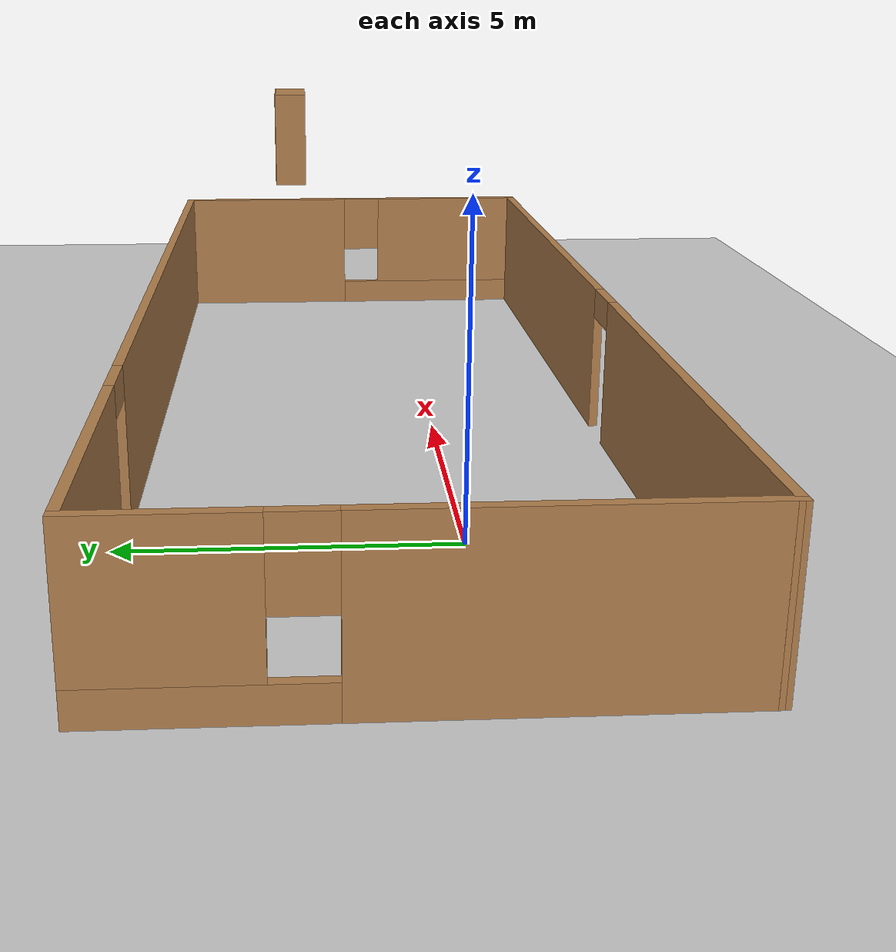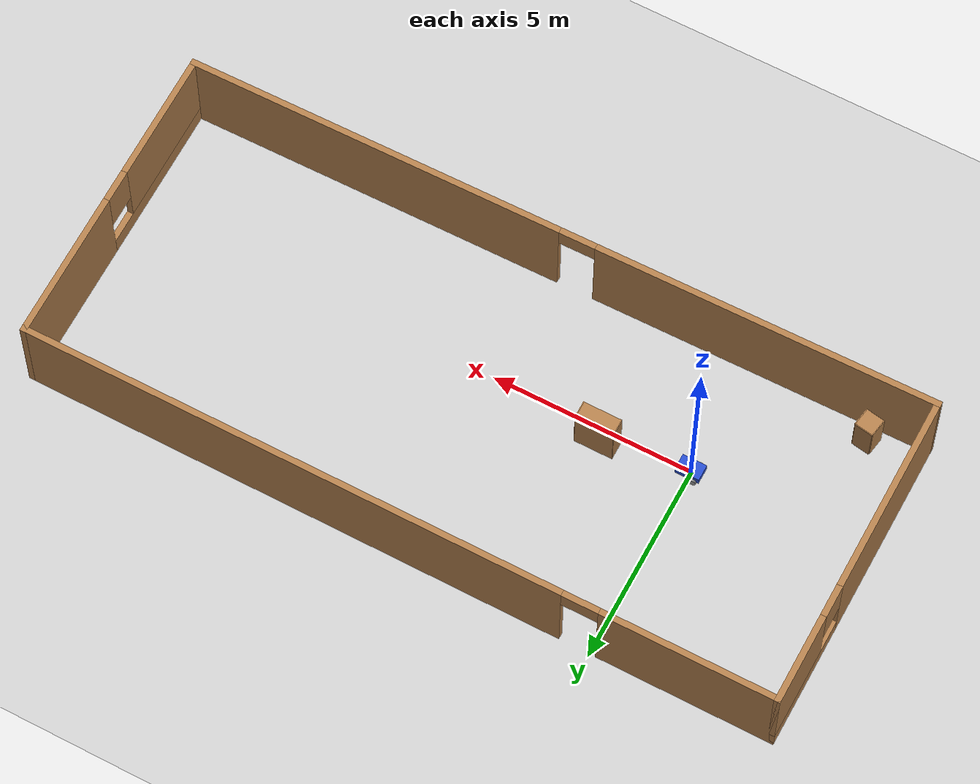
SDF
<sdf version="1.7">
 <world name="default">
  <light name="sun" type="directional">
   <pose>0 0 10 0 -0 0</pose>
   <diffuse>0.8 0.8 0.8 1</diffuse>
   <specular>0.2 0.2 0.2 1</specular>
   <attenuation>
    <range>1000</range>
    <constant>0.9</constant>
    <linear>0.01</linear>
    <quadratic>0.001</quadratic>
   </attenuation>
   <direction>-0.5 0.1 -0.9</direction>
   <spot><inner_angle>0</inner_angle><outer_angle>0</outer_angle><falloff>0</falloff></spot>
  </light>
  <model name="ground_plane">
   <static>1</static>
   <link name="link">
    <collision name="collision">
     <geometry><plane><normal>0 0 1</normal><size>100 100</size></plane></geometry>
     <surface><friction><ode><mu>100</mu><mu2>50</mu2></ode></friction></surface>
    </collision>
    <visual name="visual">
     <cast_shadows>0</cast_shadows>
     <geometry><plane><normal>0 0 1</normal><size>100 100</size></plane></geometry>
     <material>
      <script><uri>file://media/materials/scripts/gazebo.material</uri><name>Gazebo/Grey</name></script>
     </material>
    </visual>
   </link>
  </model>
  <gravity>0 0 -9.8</gravity>
  <magnetic_field>6e-06 2.3e-05 -4.2e-05</magnetic_field>
  <atmosphere type="adiabatic"/>
  <physics type="ode">
   <max_step_size>0.001</max_step_size>
   <real_time_factor>1</real_time_factor>
   <real_time_update_rate>1000</real_time_update_rate>
  </physics>
  <scene><ambient>0.4 0.4 0.4 1</ambient><background>0.7 0.7 0.7 1</background><shadows>1</shadows></scene>
  <audio><device>default</device></audio>
  <spherical_coordinates>
   <surface_model>EARTH_WGS84</surface_model>
   <latitude_deg>0</latitude_deg>
   <longitude_deg>0</longitude_deg>
   <elevation>0</elevation>
   <heading_deg>0</heading_deg>
  </spherical_coordinates>
  <model name="bookshelf">
   <static>1</static>
   <link name="link">
    <inertial><mass>1</mass></inertial>
    <collision name="back">
     <pose>0 0.005 0.6 0 -0 0</pose>
     <geometry><box><size>0.9 0.01 1.2</size></box></geometry>
    </collision>
    <visual name="visual1">
     <pose>0 0.005 0.6 0 -0 0</pose>
     <geometry><box><size>0.9 0.01 1.2</size></box></geometry>
     <material>
      <script><uri>file://media/materials/scripts/gazebo.material</uri><name>Gazebo/Wood</name></script>
     </material>
    </visual>
    <collision name="left_side">
     <pose>0.45 -0.195 0.6 0 -0 0</pose>
     <geometry><box><size>0.02 0.4 1.2</size></box></geometry>
    </collision>
    <visual name="visual2">
     <pose>0.45 -0.195 0.6 0 -0 0</pose>
     <geometry><box><size>0.02 0.4 1.2</size></box></geometry>
     <material>
      <script><uri>file://media/materials/scripts/gazebo.material</uri><name>Gazebo/Wood</name></script>
     </material>
    </visual>
    <collision name="right_side">
     <pose>-0.45 -0.195 0.6 0 -0 0</pose>
     <geometry><box><size>0.02 0.4 1.2</size></box></geometry>
    </collision>
    <visual name="visual3">
     <pose>-0.45 -0.195 0.6 0 -0 0</pose>
     <geometry><box><size>0.02 0.4 1.2</size></box></geometry>
     <material>
      <script><uri>file://media/materials/scripts/gazebo.material</uri><name>Gazebo/Wood</name></script>
     </material>
    </visual>
    <collision name="bottom">
     <pose>0 -0.195 0.03 0 -0 0</pose>
     <geometry><box><size>0.88 0.4 0.06</size></box></geometry>
    </collision>
    <visual name="visual4">
     <pose>0 -0.195 0.03 0 -0 0</pose>
     <geometry><box><size>0.88 0.4 0.06</size></box></geometry>
     <material>
      <script><uri>file://media/materials/scripts/gazebo.material</uri><name>Gazebo/Wood</name></script>
     </material>
    </visual>
    <collision name="top">
     <pose>0 -0.195 1.19 0 -0 0</pose>
     <geometry><box><size>0.88 0.4 0.02</size></box></geometry>
    </collision>
    <visual name="visual5">
     <pose>0 -0.195 1.19 0 -0 0</pose>
     <geometry><box><size>0.88 0.4 0.02</size></box></geometry>
     <material>
      <script><uri>file://media/materials/scripts/gazebo.material</uri><name>Gazebo/Wood</name></script>
     </material>
    </visual>
    <collision name="low_shelf">
     <pose>0 -0.195 0.43 0 -0 0</pose>
     <geometry><box><size>0.88 0.4 0.02</size></box></geometry>
    </collision>
    <visual name="visual6">
     <pose>0 -0.195 0.43 0 -0 0</pose>
     <geometry><box><size>0.88 0.4 0.02</size></box></geometry>
     <material>
      <script><uri>file://media/materials/scripts/gazebo.material</uri><name>Gazebo/Wood</name></script>
     </material>
    </visual>
    <collision name="high_shelf">
     <pose>0 -0.195 0.8 0 -0 0</pose>
     <geometry><box><size>0.88 0.4 0.02</size></box></geometry>
    </collision>
    <visual name="visual7">
     <pose>0 -0.195 0.8 0 -0 0</pose>
     <geometry><box><size>0.88 0.4 0.02</size></box></geometry>
     <material>
      <script><uri>file://media/materials/scripts/gazebo.material</uri><name>Gazebo/Wood</name></script>
     </material>
    </visual>
   </link>
   <pose>1.26303 2.57704 5.00794 0 -0 0</pose>
  </model>
  <model name="cabinet">
   <static>1</static>
   <link name="cabinet_bottom_plate">
    <inertial>
     <pose>0 0 -1 0 -0 0</pose>
     <inertia><ixx>2.05</ixx><ixy>0</ixy><ixz>0</ixz><iyy>2.05</iyy><iyz>0</iyz><izz>2.05</izz></inertia>
     <mass>25</mass>
    </inertial>
    <collision name="cabinet_bottom_plate_geom">
     <pose>0 0 0.01 0 -0 0</pose>
     <geometry><box><size>0.45 0.45 0.02</size></box></geometry>
    </collision>
    <visual name="cabinet_bottom_plate_geom_visual">
     <pose>0 0 0.01 0 -0 0</pose>
     <geometry><box><size>0.45 0.45 0.02</size></box></geometry>
     <material>
      <script><uri>file://media/materials/scripts/gazebo.material</uri><name>Gazebo/Wood</name></script>
     </material>
    </visual>
    <collision name="cabinet_bottom_plate_geom_cabinet_back_plate">
     <pose>0.235 0 0.51 0 -0 0</pose>
     <geometry><box><size>0.02 0.45 1.02</size></box></geometry>
    </collision>
    <visual name="cabinet_bottom_plate_geom_cabinet_back_plate_visual">
     <pose>0.235 0 0.51 0 -0 0</pose>
     <geometry><box><size>0.02 0.45 1.02</size></box></geometry>
     <material>
      <script><uri>file://media/materials/scripts/gazebo.material</uri><name>Gazebo/Wood</name></script>
     </material>
    </visual>
    <collision name="cabinet_bottom_plate_geom_cabinet_left_plate">
     <pose>0 0.235 0.51 0 -0 0</pose>
     <geometry><box><size>0.45 0.02 1.02</size></box></geometry>
    </collision>
    <visual name="cabinet_bottom_plate_geom_cabinet_left_plate_visual">
     <pose>0 0.235 0.51 0 -0 0</pose>
     <geometry><box><size>0.45 0.02 1.02</size></box></geometry>
     <material>
      <script><uri>file://media/materials/scripts/gazebo.material</uri><name>Gazebo/Wood</name></script>
     </material>
    </visual>
    <collision name="cabinet_bottom_plate_geom_cabinet_middle_plate">
     <pose>0 0 0.51 0 -0 0</pose>
     <geometry><box><size>0.45 0.45 0.02</size></box></geometry>
    </collision>
    <visual name="cabinet_bottom_plate_geom_cabinet_middle_plate_visual">
     <pose>0 0 0.51 0 -0 0</pose>
     <geometry><box><size>0.45 0.45 0.02</size></box></geometry>
     <material>
      <script><uri>file://media/materials/scripts/gazebo.material</uri><name>Gazebo/Wood</name></script>
     </material>
    </visual>
    <collision name="cabinet_bottom_plate_geom_cabinet_right_plate">
     <pose>0 -0.235 0.51 0 -0 0</pose>
     <geometry><box><size>0.45 0.02 1.02</size></box></geometry>
    </collision>
    <visual name="cabinet_bottom_plate_geom_cabinet_right_plate_visual">
     <pose>0 -0.235 0.51 0 -0 0</pose>
     <geometry><box><size>0.45 0.02 1.02</size></box></geometry>
     <material>
      <script><uri>file://media/materials/scripts/gazebo.material</uri><name>Gazebo/Wood</name></script>
     </material>
    </visual>
    <collision name="cabinet_bottom_plate_geom_cabinet_top_plate">
     <pose>0 0 1.01 0 -0 0</pose>
     <geometry><box><size>0.45 0.45 0.02</size></box></geometry>
    </collision>
    <visual name="cabinet_bottom_plate_geom_cabinet_top_plate_visual">
     <pose>0 0 1.01 0 -0 0</pose>
     <geometry><box><size>0.45 0.45 0.02</size></box></geometry>
     <material>
      <script><uri>file://media/materials/scripts/gazebo.material</uri><name>Gazebo/Wood</name></script>
     </material>
    </visual>
   </link>
   <pose>-3.10889 -2.54204 0 0 -0 1.40258</pose>
  </model>
  <model name="test">
   <pose>4.86771 0.932351 0 0 -0 0</pose>
   <link name="Wall_1">
    <pose>-9.3 0.0005 0 0 -0 1.5708</pose>
    <visual name="Wall_1_Visual_0">
     <pose>-1.51993 0 1.25 0 -0 0</pose>
     <geometry><box><size>4.96014 0.15 2.5</size></box></geometry>
     <material>
      <script><uri>file://media/materials/scripts/gazebo.material</uri><name>Gazebo/Wood</name></script>
      <ambient>1 1 1 1</ambient>
     </material>
     <meta><layer>0</layer></meta>
    </visual>
    <collision name="Wall_1_Collision_0">
     <geometry><box><size>4.96014 0.15 2.5</size></box></geometry>
     <pose>-1.51993 0 1.25 0 -0 0</pose>
    </collision>
    <visual name="Wall_1_Visual_1">
     <pose>2.48007 0 0.25 0 -0 0</pose>
     <geometry><box><size>3.03986 0.15 0.5</size></box></geometry>
     <material>
      <script><uri>file://media/materials/scripts/gazebo.material</uri><name>Gazebo/Wood</name></script>
      <ambient>1 1 1 1</ambient>
     </material>
     <meta><layer>0</layer></meta>
    </visual>
    <collision name="Wall_1_Collision_1">
     <geometry><box><size>3.03986 0.15 0.5</size></box></geometry>
     <pose>2.48007 0 0.25 0 -0 0</pose>
    </collision>
    <visual name="Wall_1_Visual_2">
     <pose>2.88007 0 1.5 0 -0 0</pose>
     <geometry><box><size>2.23986 0.15 2</size></box></geometry>
     <material>
      <script><uri>file://media/materials/scripts/gazebo.material</uri><name>Gazebo/Wood</name></script>
      <ambient>1 1 1 1</ambient>
     </material>
     <meta><layer>0</layer></meta>
    </visual>
    <collision name="Wall_1_Collision_2">
     <geometry><box><size>2.23986 0.15 2</size></box></geometry>
     <pose>2.88007 0 1.5 0 -0 0</pose>
    </collision>
    <visual name="Wall_1_Visual_3">
     <pose>1.36014 0 1.9 0 -0 0</pose>
     <geometry><box><size>0.8 0.15 1.2</size></box></geometry>
     <material>
      <script><uri>file://media/materials/scripts/gazebo.material</uri><name>Gazebo/Wood</name></script>
      <ambient>1 1 1 1</ambient>
     </material>
     <meta><layer>0</layer></meta>
    </visual>
    <collision name="Wall_1_Collision_3">
     <geometry><box><size>0.8 0.15 1.2</size></box></geometry>
     <pose>1.36014 0 1.9 0 -0 0</pose>
    </collision>
   </link>
   <link name="Wall_3">
    <pose>0 3.9255 0 0 -0 0</pose>
    <visual name="Wall_3_Visual_0">
     <pose>-7.19265 0 1.25 0 -0 0</pose>
     <geometry><box><size>4.36471 0.15 2.5</size></box></geometry>
     <material>
      <script><uri>file://media/materials/scripts/gazebo.material</uri><name>Gazebo/Wood</name></script>
      <ambient>1 1 1 1</ambient>
     </material>
     <meta><layer>0</layer></meta>
    </visual>
    <collision name="Wall_3_Collision_0">
     <geometry><box><size>4.36471 0.15 2.5</size></box></geometry>
     <pose>-7.19265 0 1.25 0 -0 0</pose>
    </collision>
    <visual name="Wall_3_Visual_1">
     <pose>2.63235 0 1.25 0 -0 0</pose>
     <geometry><box><size>13.4853 0.15 2.5</size></box></geometry>
     <material>
      <script><uri>file://media/materials/scripts/gazebo.material</uri><name>Gazebo/Wood</name></script>
      <ambient>1 1 1 1</ambient>
     </material>
     <meta><layer>0</layer></meta>
    </visual>
    <collision name="Wall_3_Collision_1">
     <geometry><box><size>13.4853 0.15 2.5</size></box></geometry>
     <pose>2.63235 0 1.25 0 -0 0</pose>
    </collision>
    <visual name="Wall_3_Visual_2">
     <pose>-4.56029 0 2.25 0 -0 0</pose>
     <geometry><box><size>0.9 0.15 0.5</size></box></geometry>
     <material>
      <script><uri>file://media/materials/scripts/gazebo.material</uri><name>Gazebo/Wood</name></script>
      <ambient>1 1 1 1</ambient>
     </material>
     <meta><layer>0</layer></meta>
    </visual>
    <collision name="Wall_3_Collision_2">
     <geometry><box><size>0.9 0.15 0.5</size></box></geometry>
     <pose>-4.56029 0 2.25 0 -0 0</pose>
    </collision>
   </link>
   <link name="Wall_4">
    <pose>9.3 0.1255 0 0 -0 -1.5708</pose>
    <visual name="Wall_4_Visual_0">
     <pose>-2.02357 0 1.25 0 -0 0</pose>
     <geometry><box><size>3.70287 0.15 2.5</size></box></geometry>
     <material>
      <script><uri>file://media/materials/scripts/gazebo.material</uri><name>Gazebo/Wood</name></script>
      <ambient>1 1 1 1</ambient>
     </material>
     <meta><layer>0</layer></meta>
    </visual>
    <collision name="Wall_4_Collision_0">
     <geometry><box><size>3.70287 0.15 2.5</size></box></geometry>
     <pose>-2.02357 0 1.25 0 -0 0</pose>
    </collision>
    <visual name="Wall_4_Visual_1">
     <pose>1.85143 0 0.25 0 -0 0</pose>
     <geometry><box><size>4.04713 0.15 0.5</size></box></geometry>
     <material>
      <script><uri>file://media/materials/scripts/gazebo.material</uri><name>Gazebo/Wood</name></script>
      <ambient>1 1 1 1</ambient>
     </material>
     <meta><layer>0</layer></meta>
    </visual>
    <collision name="Wall_4_Collision_1">
     <geometry><box><size>4.04713 0.15 0.5</size></box></geometry>
     <pose>1.85143 0 0.25 0 -0 0</pose>
    </collision>
    <visual name="Wall_4_Visual_2">
     <pose>2.25143 0 1.5 0 -0 0</pose>
     <geometry><box><size>3.24713 0.15 2</size></box></geometry>
     <material>
      <script><uri>file://media/materials/scripts/gazebo.material</uri><name>Gazebo/Wood</name></script>
      <ambient>1 1 1 1</ambient>
     </material>
     <meta><layer>0</layer></meta>
    </visual>
    <collision name="Wall_4_Collision_2">
     <geometry><box><size>3.24713 0.15 2</size></box></geometry>
     <pose>2.25143 0 1.5 0 -0 0</pose>
    </collision>
    <visual name="Wall_4_Visual_3">
     <pose>0.22787 0 1.9 0 -0 0</pose>
     <geometry><box><size>0.8 0.15 1.2</size></box></geometry>
     <material>
      <script><uri>file://media/materials/scripts/gazebo.material</uri><name>Gazebo/Wood</name></script>
      <ambient>1 1 1 1</ambient>
     </material>
     <meta><layer>0</layer></meta>
    </visual>
    <collision name="Wall_4_Collision_3">
     <geometry><box><size>0.8 0.15 1.2</size></box></geometry>
     <pose>0.22787 0 1.9 0 -0 0</pose>
    </collision>
   </link>
   <link name="Wall_5">
    <pose>0 -3.7995 0 0 -0 -3.12815</pose>
    <visual name="Wall_5_Visual_0">
     <pose>-4.68137 0 1.25 0 -0 0</pose>
     <geometry><box><size>9.38895 0.15 2.5</size></box></geometry>
     <material>
      <script><uri>file://media/materials/scripts/gazebo.material</uri><name>Gazebo/Wood</name></script>
      <ambient>1 1 1 1</ambient>
     </material>
     <meta><layer>0</layer></meta>
    </visual>
    <collision name="Wall_5_Collision_0">
     <geometry><box><size>9.38895 0.15 2.5</size></box></geometry>
     <pose>-4.68137 0 1.25 0 -0 0</pose>
    </collision>
    <visual name="Wall_5_Visual_1">
     <pose>5.14447 0 1.25 0 -0 0</pose>
     <geometry><box><size>8.46273 0.15 2.5</size></box></geometry>
     <material>
      <script><uri>file://media/materials/scripts/gazebo.material</uri><name>Gazebo/Wood</name></script>
      <ambient>1 1 1 1</ambient>
     </material>
     <meta><layer>0</layer></meta>
    </visual>
    <collision name="Wall_5_Collision_1">
     <geometry><box><size>8.46273 0.15 2.5</size></box></geometry>
     <pose>5.14447 0 1.25 0 -0 0</pose>
    </collision>
    <visual name="Wall_5_Visual_2">
     <pose>0.46311 0 2.25 0 -0 0</pose>
     <geometry><box><size>0.9 0.15 0.5</size></box></geometry>
     <material>
      <script><uri>file://media/materials/scripts/gazebo.material</uri><name>Gazebo/Wood</name></script>
      <ambient>1 1 1 1</ambient>
     </material>
     <meta><layer>0</layer></meta>
    </visual>
    <collision name="Wall_5_Collision_2">
     <geometry><box><size>0.9 0.15 0.5</size></box></geometry>
     <pose>0.46311 0 2.25 0 -0 0</pose>
    </collision>
   </link>
   <static>1</static>
  </model>
  <model name="my_robot">
   <link name="base_footprint">
    <inertial>
     <pose>0.023304 0 0.186607 0 -0 0</pose>
     <mass>5.6</mass>
     <inertia>
      <ixx>0.678934</ixx>
      <ixy>0</ixy>
      <ixz>0.0132522</ixz>
      <iyy>0.905258</iyy>
      <iyz>0</iyz>
      <izz>0.361699</izz>
     </inertia>
    </inertial>
    <collision name="base_footprint_fixed_joint_lump__base_link_collision">
     <pose>0 0 0.2 0 -0 0</pose>
     <geometry><box><size>0.6 0.4 0.2</size></box></geometry>
    </collision>
    <collision name="base_footprint_fixed_joint_lump__camera_link_collision_1">
     <pose>0.305 0 0.2 0 -0 0</pose>
     <geometry><box><size>0.01 0.1 0.05</size></box></geometry>
    </collision>
    <collision name="base_footprint_fixed_joint_lump__caster_wheel_link_collision_2">
     <pose>0.2 0 0.05 0 -0 0</pose>
     <geometry><sphere><radius>0.05</radius></sphere></geometry>
     <surface><friction><ode><mu>0.1</mu><mu2>0.1</mu2></ode></friction></surface>
    </collision>
    <visual name="base_footprint_fixed_joint_lump__base_link_visual">
     <pose>0 0 0.2 0 -0 0</pose>
     <geometry><box><size>0.6 0.4 0.2</size></box></geometry>
     <material>
      <script><name>Gazebo/Blue</name><uri>file://media/materials/scripts/gazebo.material</uri></script>
     </material>
    </visual>
    <visual name="base_footprint_fixed_joint_lump__camera_link_visual_1">
     <pose>0.305 0 0.2 0 -0 0</pose>
     <geometry><box><size>0.01 0.1 0.05</size></box></geometry>
     <material>
      <script><name>Gazebo/Red</name><uri>file://media/materials/scripts/gazebo.material</uri></script>
     </material>
    </visual>
    <visual name="base_footprint_fixed_joint_lump__caster_wheel_link_visual_2">
     <pose>0.2 0 0.05 0 -0 0</pose>
     <geometry><sphere><radius>0.05</radius></sphere></geometry>
     <material>
      <script><name>Gazebo/Grey</name><uri>file://media/materials/scripts/gazebo.material</uri></script>
     </material>
    </visual>
    <sensor name="camera_sensor" type="camera">
     <visualize>1</visualize>
     <update_rate>10</update_rate>
     <plugin name="camera_controller" filename="libgazebo_ros_camera.so">
      <frame_name>camera_link_optical</frame_name>
     </plugin>
     <pose>0.305 0 0.2 0 -0 0</pose>
     <camera>
      <horizontal_fov>1.047</horizontal_fov>
      <image><width>320</width><height>240</height></image>
      <clip><near>0.1</near><far>100</far></clip>
     </camera>
    </sensor>
   </link>
   <joint name="base_left_wheel_joint" type="revolute">
    <pose relative_to="base_footprint">-0.15 0.225 0.1 0 -0 0</pose>
    <parent>base_footprint</parent>
    <child>left_wheel_link</child>
    <axis>
     <xyz>0 1 0</xyz>
     <limit><lower>-1e+16</lower><upper>1e+16</upper></limit>
     <dynamics><spring_reference>0</spring_reference><spring_stiffness>0</spring_stiffness></dynamics>
    </axis>
   </joint>
   <link name="left_wheel_link">
    <pose relative_to="base_left_wheel_joint">0 0 0 0 -0 0</pose>
    <inertial>
     <pose>0 0 0 1.5708 -0 0</pose>
     <mass>1</mass>
     <inertia><ixx>0.0108333</ixx><ixy>0</ixy><ixz>0</ixz><iyy>0.0108333</iyy><iyz>0</iyz><izz>0.02</izz></inertia>
    </inertial>
    <collision name="left_wheel_link_collision">
     <pose>0 0 0 1.5708 -0 0</pose>
     <geometry><cylinder><length>0.05</length><radius>0.1</radius></cylinder></geometry>
    </collision>
    <visual name="left_wheel_link_visual">
     <pose>0 0 0 1.5708 -0 0</pose>
     <geometry><cylinder><length>0.05</length><radius>0.1</radius></cylinder></geometry>
     <material>
      <script><name>Gazebo/Grey</name><uri>file://media/materials/scripts/gazebo.material</uri></script>
     </material>
    </visual>
   </link>
   <joint name="base_right_wheel_joint" type="revolute">
    <pose relative_to="base_footprint">-0.15 -0.225 0.1 0 -0 0</pose>
    <parent>base_footprint</parent>
    <child>right_wheel_link</child>
    <axis>
     <xyz>0 1 0</xyz>
     <limit><lower>-1e+16</lower><upper>1e+16</upper></limit>
     <dynamics><spring_reference>0</spring_reference><spring_stiffness>0</spring_stiffness></dynamics>
    </axis>
   </joint>
   <link name="right_wheel_link">
    <pose relative_to="base_right_wheel_joint">0 0 0 0 -0 0</pose>
    <inertial>
     <pose>0 0 0 1.5708 -0 0</pose>
     <mass>1</mass>
     <inertia><ixx>0.0108333</ixx><ixy>0</ixy><ixz>0</ixz><iyy>0.0108333</iyy><iyz>0</iyz><izz>0.02</izz></inertia>
    </inertial>
    <collision name="right_wheel_link_collision">
     <pose>0 0 0 1.5708 -0 0</pose>
     <geometry><cylinder><length>0.05</length><radius>0.1</radius></cylinder></geometry>
    </collision>
    <visual name="right_wheel_link_visual">
     <pose>0 0 0 1.5708 -0 0</pose>
     <geometry><cylinder><length>0.05</length><radius>0.1</radius></cylinder></geometry>
     <material>
      <script><name>Gazebo/Grey</name><uri>file://media/materials/scripts/gazebo.material</uri></script>
     </material>
    </visual>
   </link>
   <static>0</static>
   <plugin name="diff_drive_controller" filename="libgazebo_ros_diff_drive.so">
    <update_rate>50</update_rate>
    <left_joint>base_left_wheel_joint</left_joint>
    <right_joint>base_right_wheel_joint</right_joint>
    <wheel_separation>0.45</wheel_separation>
    <wheel_diameter>0.2</wheel_diameter>
    <publish_odom>1</publish_odom>
    <publish_odom_tf>1</publish_odom_tf>
    <publish_wheel_tf>1</publish_wheel_tf>
    <odometry_topic>odom</odometry_topic>
    <odometry_frame>odom</odometry_frame>
    <robot_base_frame>base_footprint</robot_base_frame>
   </plugin>
   <pose>0.021896 0.001588 -8e-06 0 3e-06 -0.005871</pose>
  </model>
 </world>
</sdf>
